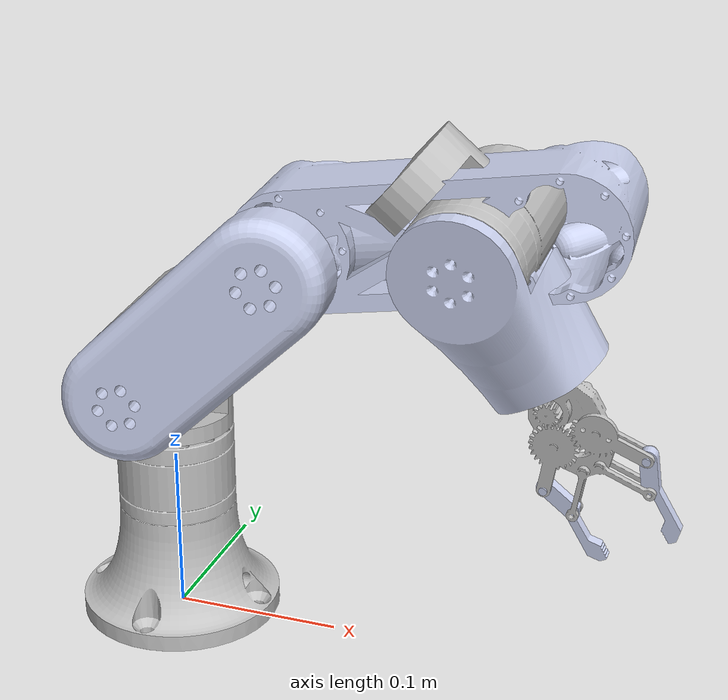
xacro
<?xml version="1.0"?>
<robot xmlns:xacro="http://www.ros.org/wiki/xacro" name="my_arm_robot">

  <!-- 1. Định nghĩa các Argument (Nhận từ Launch file) -->
  <xacro:arg name="use_mock_hardware" default="false" />
  <xacro:arg name="serial_port" default="/dev/ttyUSB0" />
  <xacro:arg name="baud_rate" default="115200" />

  <!-- 2. Import các file thành phần -->
  <xacro:include filename="$(find my_arm_robot)/urdf/robot_core.xacro" />
  <xacro:include filename="$(find my_arm_robot)/urdf/ros2_control.xacro" />

  <!-- 3. Thực thi Macro điều khiển -->
  <!-- Chú ý: Tên tham số ở đây phải khớp 100% với file ros2_control.xacro -->
  <xacro:my_robot_ros2_control
    name="MyRobotSystem"
    use_mock_hardware="$(arg use_mock_hardware)"
    serial_port="$(arg serial_port)"
    baud_rate="$(arg baud_rate)"
  />

</robot>

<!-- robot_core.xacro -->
<robot xmlns:xacro="http://www.ros.org/wiki/xacro" name="my_robot">
  <link
    name="base_link">
    <inertial>
      <origin
        xyz="-0.000118655761012276 2.48337202080062E-07 0.0488032071531479"
        rpy="0 0 0" />
      <mass
        value="0.467996005301711" />
      <inertia
        ixx="0.000361795815083131"
        ixy="5.61764733440739E-11"
        ixz="-1.36877587169084E-07"
        iyy="0.000359832165777065"
        iyz="1.99446545141866E-10"
        izz="0.000507420601912116" />
    </inertial>
    <visual>
      <origin
        xyz="0 0 0"
        rpy="0 0 0" />
      <geometry>
        <mesh
          filename="package://my_arm_robot/meshes/base_link.STL" />
      </geometry>
      <material
        name="">
        <color
          rgba="0.752941176470588 0.752941176470588 0.752941176470588 1" />
      </material>
    </visual>
    <collision>
      <origin
        xyz="0 0 0"
        rpy="0 0 0" />
      <geometry>
        <mesh
          filename="package://my_arm_robot/meshes/base_link.STL" />
      </geometry>
    </collision>
  </link>
  <link
    name="Link_1">
    <inertial>
      <origin
        xyz="5.7583E-05 -0.00066166 0.040226"
        rpy="0 0 0" />
      <mass
        value="0.35373" />
      <inertia
        ixx="0.00021017"
        ixy="-3.8243E-06"
        ixz="2.1832E-06"
        iyy="0.00025369"
        iyz="-2.5034E-05"
        izz="0.00018361" />
    </inertial>
    <visual>
      <origin
        xyz="0 0 0"
        rpy="0 0 0" />
      <geometry>
        <mesh
          filename="package://my_arm_robot/meshes/Link_1.STL" />
      </geometry>
      <material
        name="">
        <color
          rgba="0.75294 0.75294 0.75294 1" />
      </material>
    </visual>
    <collision>
      <origin
        xyz="0 0 0"
        rpy="0 0 0" />
      <geometry>
        <mesh
          filename="package://my_arm_robot/meshes/Link_1.STL" />
      </geometry>
    </collision>
  </link>
  <joint
    name="Link_1_joint"
    type="revolute">
    <origin
      xyz="0 0 0.122"
      rpy="0 0 0" />
    <parent
      link="base_link" />
    <child
      link="Link_1" />
    <axis
      xyz="0 0 -1" />
    <limit
      lower="-1.57"
      upper="1.57"
      effort="100"
      velocity="2" />
  </joint>
  <link
    name="Link_2">
    <inertial>
      <origin
        xyz="0.055 -1.3239E-14 0.014552"
        rpy="0 0 0" />
      <mass
        value="0.32748" />
      <inertia
        ixx="0.00014536"
        ixy="1.8291E-19"
        ixz="-6.7763E-21"
        iyy="0.0007689"
        iyz="3.7269E-20"
        izz="0.0008667" />
    </inertial>
    <visual>
      <origin
        xyz="0 0 0"
        rpy="0 0 0" />
      <geometry>
        <mesh
          filename="package://my_arm_robot/meshes/Link_2.STL" />
      </geometry>
      <material
        name="">
        <color
          rgba="0.79216 0.81961 0.92941 1" />
      </material>
    </visual>
    <collision>
      <origin
        xyz="0 0 0"
        rpy="0 0 0" />
      <geometry>
        <mesh
          filename="package://my_arm_robot/meshes/Link_2.STL" />
      </geometry>
    </collision>
  </link>
  <joint
    name="Link_2_joint"
    type="revolute">
    <origin
      xyz="0.0047777 -0.054792 0.046"
      rpy="1.5708 -0.75408 0.086978" />
    <parent
      link="Link_1" />
    <child
      link="Link_2" />
    <axis
      xyz="0 0 -1" />
    <limit
      lower="-1.57"
      upper="1.57"
      effort="100"
      velocity="2" />
  </joint>
  <link
    name="Link_3">
    <inertial>
      <origin
        xyz="0.0083382 -0.037856 0.05699"
        rpy="0 0 0" />
      <mass
        value="0.64467" />
      <inertia
        ixx="0.00069418"
        ixy="2.7032E-05"
        ixz="-3.5781E-07"
        iyy="0.00035252"
        iyz="-8.8078E-05"
        izz="0.00068737" />
    </inertial>
    <visual>
      <origin
        xyz="0 0 0"
        rpy="0 0 0" />
      <geometry>
        <mesh
          filename="package://my_arm_robot/meshes/Link_3.STL" />
      </geometry>
      <material
        name="">
        <color
          rgba="0.79216 0.81961 0.92941 1" />
      </material>
    </visual>
    <collision>
      <origin
        xyz="0 0 0"
        rpy="0 0 0" />
      <geometry>
        <mesh
          filename="package://my_arm_robot/meshes/Link_3.STL" />
      </geometry>
    </collision>
  </link>
  <joint
    name="Link_3_joint"
    type="revolute">
    <origin
      xyz="0.11 0 0"
      rpy="3.1416 0 -0.75408" />
    <parent
      link="Link_2" />
    <child
      link="Link_3" />
    <axis
      xyz="0 0 1" />
    <limit
      lower="-1.57"
      upper="1.57"
      effort="100"
      velocity="2" />
  </joint>
  <link
    name="Link_4">
    <inertial>
      <origin
        xyz="8.1742E-05 -0.0037326 0.044951"
        rpy="0 0 0" />
      <mass
        value="0.35757" />
      <inertia
        ixx="0.00025319"
        ixy="-6.6279E-07"
        ixz="-9.0438E-07"
        iyy="0.00028342"
        iyz="4.1327E-05"
        izz="0.00020218" />
    </inertial>
    <visual>
      <origin
        xyz="0 0 0"
        rpy="0 0 0" />
      <geometry>
        <mesh
          filename="package://my_arm_robot/meshes/Link_4.STL" />
      </geometry>
      <material
        name="">
        <color
          rgba="0.75294 0.75294 0.75294 1" />
      </material>
    </visual>
    <collision>
      <origin
        xyz="0 0 0"
        rpy="0 0 0" />
      <geometry>
        <mesh
          filename="package://my_arm_robot/meshes/Link_4.STL" />
      </geometry>
    </collision>
  </link>
  <joint
    name="Link_4_joint"
    type="revolute">
    <origin
      xyz="0.057193 -0.043058 0.055"
      rpy="-1.5708 0.13232 -0.85642" />
    <parent
      link="Link_3" />
    <child
      link="Link_4" />
    <axis
      xyz="0 0 -1" />
    <limit
      lower="-1.57"
      upper="1.57"
      effort="50"
      velocity="2" />
  </joint>
  <link
    name="Link_5">
    <inertial>
      <origin
        xyz="0.046287 2.9031E-07 -0.024452"
        rpy="0 0 0" />
      <mass
        value="0.18274" />
      <inertia
        ixx="0.00020467"
        ixy="-4.253E-11"
        ixz="7.6165E-05"
        iyy="0.0002796"
        iyz="2.4385E-10"
        izz="0.00023272" />
    </inertial>
    <visual>
      <origin
        xyz="0 0 0"
        rpy="0 0 0" />
      <geometry>
        <mesh
          filename="package://my_arm_robot/meshes/Link_5.STL" />
      </geometry>
      <material
        name="">
        <color
          rgba="0.79216 0.81961 0.92941 1" />
      </material>
    </visual>
    <collision>
      <origin
        xyz="0 0 0"
        rpy="0 0 0" />
      <geometry>
        <mesh
          filename="package://my_arm_robot/meshes/Link_5.STL" />
      </geometry>
    </collision>
  </link>
  <joint
    name="Link_5_joint"
    type="revolute">
    <origin
      xyz="-0.00094211 0.04299 0.056"
      rpy="1.5708 -1.2184 -3.1197" />
    <parent
      link="Link_4" />
    <child
      link="Link_5" />
    <axis
      xyz="0 0 -1" />
    <limit
      lower="-1.57"
      upper="1.57"
      effort="50"
      velocity="2" />
  </joint>
  <link
    name="Link_6">
    <inertial>
      <origin
        xyz="9.3082E-05 -0.00011886 -0.011318"
        rpy="0 0 0" />
      <mass
        value="0.033013" />
      <inertia
        ixx="4.9309E-06"
        ixy="-5.7312E-08"
        ixz="1.7745E-08"
        iyy="4.9634E-06"
        iyz="-2.4198E-08"
        izz="9.2017E-06" />
    </inertial>
    <visual>
      <origin
        xyz="0 0 0"
        rpy="0 0 0" />
      <geometry>
        <mesh
          filename="package://my_arm_robot/meshes/Link_6.STL" />
      </geometry>
      <material
        name="">
        <color
          rgba="0.75294 0.75294 0.75294 1" />
      </material>
    </visual>
    <collision>
      <origin
        xyz="0 0 0"
        rpy="0 0 0" />
      <geometry>
        <mesh
          filename="package://my_arm_robot/meshes/Link_6.STL" />
      </geometry>
    </collision>
  </link>
  <joint
    name="Link_6_joint"
    type="revolute">
    <origin
      xyz="0.084 0 -0.043"
      rpy="1.5708 0.016437 1.5708" />
    <parent
      link="Link_5" />
    <child
      link="Link_6" />
    <axis
      xyz="0 0 -1" />
    <limit
      lower="-1.57"
      upper="1.57"
      effort="50"
      velocity="2" />
  </joint>
  <link
    name="Base_Gap">
    <inertial>
      <origin
        xyz="0.0052546 0.00046579 0.023619"
        rpy="0 0 0" />
      <mass
        value="0.02487" />
      <inertia
        ixx="6.1843E-06"
        ixy="8.3674E-09"
        ixz="-9.252E-08"
        iyy="4.0012E-06"
        iyz="-3.9373E-08"
        izz="2.4924E-06" />
    </inertial>
    <visual>
      <origin
        xyz="0 0 0"
        rpy="0 0 0" />
      <geometry>
        <mesh
          filename="package://my_arm_robot/meshes/Base_Gap.STL" />
      </geometry>
      <material
        name="">
        <color
          rgba="0.75294 0.75294 0.75294 1" />
      </material>
    </visual>
    <collision>
      <origin
        xyz="0 0 0"
        rpy="0 0 0" />
      <geometry>
        <mesh
          filename="package://my_arm_robot/meshes/Base_Gap.STL" />
      </geometry>
    </collision>
  </link>
  <joint
    name="Base_Gap_joint"
    type="fixed">
    <origin
      xyz="0 0 0.008"
      rpy="0 0 1.6175" />
    <parent
      link="Link_6" />
    <child
      link="Base_Gap" />
    <axis
      xyz="0 0 0" />
  </joint>
  <link
    name="finger_right">
    <inertial>
      <origin
        xyz="0.022391 -0.0035934 -0.007"
        rpy="0 0 0" />
      <mass
        value="0.0029678" />
      <inertia
        ixx="7.8507E-08"
        ixy="1.9967E-07"
        ixz="4.3013E-23"
        iyy="8.4605E-07"
        iyz="-3.3087E-23"
        izz="9.1493E-07" />
    </inertial>
    <visual>
      <origin
        xyz="0 0 0"
        rpy="0 0 0" />
      <geometry>
        <mesh
          filename="package://my_arm_robot/meshes/finger_right.STL" />
      </geometry>
      <material
        name="">
        <color
          rgba="0.79216 0.81961 0.92941 1" />
      </material>
    </visual>
    <collision>
      <origin
        xyz="0 0 0"
        rpy="0 0 0" />
      <geometry>
        <mesh
          filename="package://my_arm_robot/meshes/finger_right.STL" />
      </geometry>
    </collision>
  </link>
  <joint
    name="gripper_right_joint"
    type="revolute">
    <origin
      xyz="0.0155 0.033007 0.054693"
      rpy="-1.5708 -1.1863 -1.5708" />
    <parent
      link="Base_Gap" />
    <child
      link="finger_right" />
    <axis
      xyz="0 0 -1" />
    <limit
      lower="-1.57"
      upper="1.57"
      effort="50"
      velocity="1" />
  </joint>
  <link
    name="finger_left">
    <inertial>
      <origin
        xyz="0.022391 0.0035934 -0.007"
        rpy="0 0 0" />
      <mass
        value="0.0029678" />
      <inertia
        ixx="7.8507E-08"
        ixy="-1.9967E-07"
        ixz="5.7903E-23"
        iyy="8.4605E-07"
        iyz="4.3013E-23"
        izz="9.1493E-07" />
    </inertial>
    <visual>
      <origin
        xyz="0 0 0"
        rpy="0 0 0" />
      <geometry>
        <mesh
          filename="package://my_arm_robot/meshes/finger_left.STL" />
      </geometry>
      <material
        name="">
        <color
          rgba="0.79216 0.81961 0.92941 1" />
      </material>
    </visual>
    <collision>
      <origin
        xyz="0 0 0"
        rpy="0 0 0" />
      <geometry>
        <mesh
          filename="package://my_arm_robot/meshes/finger_left.STL" />
      </geometry>
    </collision>
  </link>
  <joint
    name="gripper_left_joint"
    type="revolute">
    <origin
      xyz="0.0155 -0.032928 0.054756"
      rpy="1.5708 -1.1863 1.5708" />
    <parent
      link="Base_Gap" />
    <child
      link="finger_left" />
    <axis
      xyz="0 0 -1" />
    <limit
      lower="-1.57"
      upper="1.57"
      effort="50"
      velocity="1" />
    <mimic
      joint="gripper_right_joint"
      multiplier="-1"
      offset="0" />
  </joint>
  <link name="tool_center_point" />

  <joint name="tcp_joint" type="fixed">
    <parent link="Link_6"/>
    <child link="tool_center_point"/>
    <!-- QUAN TRỌNG: Cần chỉnh xyz và rpy ở đây -->
    <!-- Giả sử kẹp dài khoảng 15cm (0.15m) dọc theo trục Z của Link_6 -->
    <!-- Bạn cần đo thực tế từ mặt bích Link_6 đến điểm giữa 2 đầu ngón tay -->
    <origin xyz="0 0 0.1" rpy="0 0 0"/>
  </joint>
</robot>
